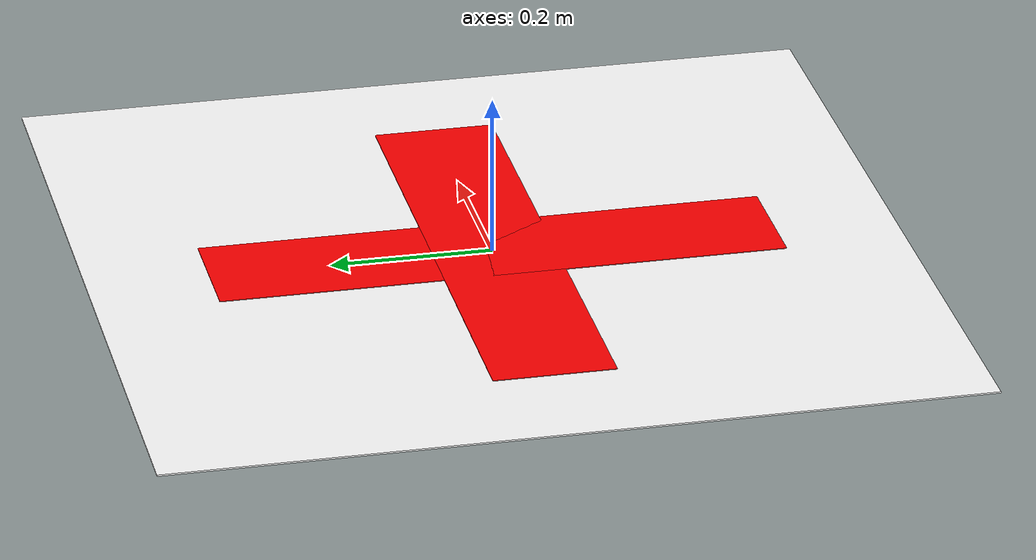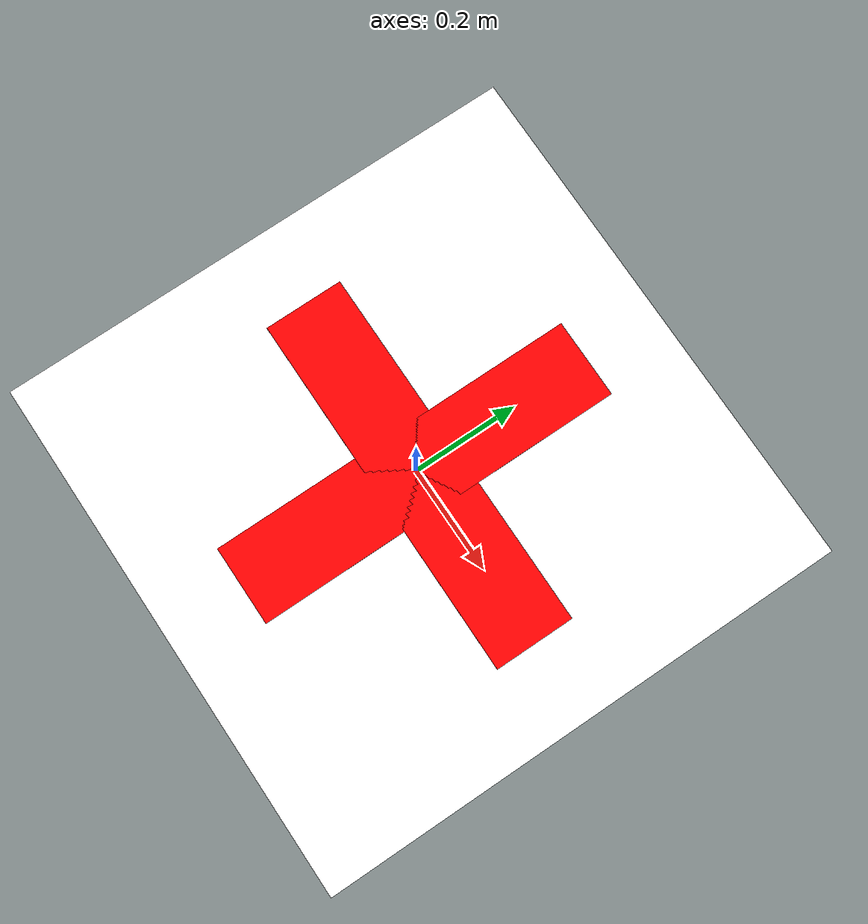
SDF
<?xml version="1.0" ?>
<!--
  FIRA Air - Delivery Marker Model
  First aid delivery target with red cross on white background
-->
<sdf version="1.9">
  <model name="delivery_marker">
    <static>true</static>
    <link name="link">

      <!-- White base -->
      <visual name="base">
        <pose>0 0 0.001 0 0 0</pose>
        <geometry>
          <box>
            <size>1 1 0.002</size>
          </box>
        </geometry>
        <material>
          <ambient>1.0 1.0 1.0 1</ambient>
          <diffuse>1.0 1.0 1.0 1</diffuse>
        </material>
      </visual>

      <!-- Red cross - Vertical bar -->
      <visual name="cross_vertical">
        <pose>0 0 0.003 0 0 0</pose>
        <geometry>
          <box>
            <size>0.15 0.7 0.001</size>
          </box>
        </geometry>
        <material>
          <ambient>0.9 0.0 0.0 1</ambient>
          <diffuse>1.0 0.0 0.0 1</diffuse>
          <specular>0.2 0.0 0.0 1</specular>
        </material>
      </visual>

      <!-- Red cross - Horizontal bar -->
      <visual name="cross_horizontal">
        <pose>0 0 0.003 0 0 0</pose>
        <geometry>
          <box>
            <size>0.7 0.15 0.001</size>
          </box>
        </geometry>
        <material>
          <ambient>0.9 0.0 0.0 1</ambient>
          <diffuse>1.0 0.0 0.0 1</diffuse>
          <specular>0.2 0.0 0.0 1</specular>
        </material>
      </visual>

      <!-- Collision -->
      <collision name="collision">
        <pose>0 0 0.001 0 0 0</pose>
        <geometry>
          <box>
            <size>1 1 0.01</size>
          </box>
        </geometry>
      </collision>

    </link>
  </model>
</sdf>
